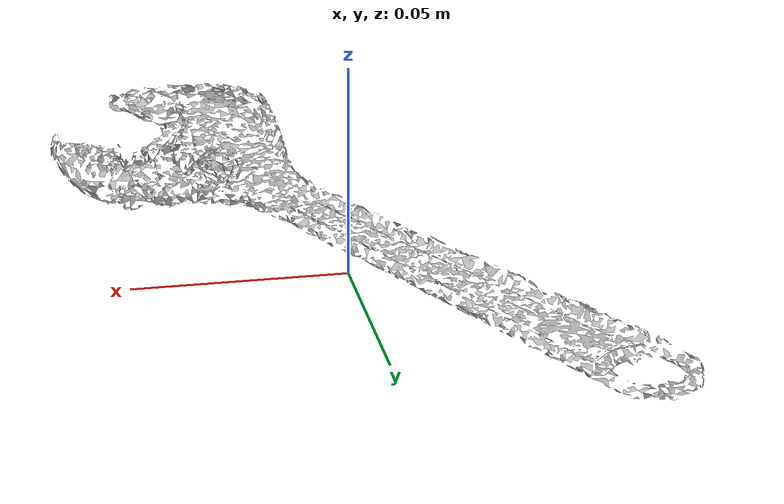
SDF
<?xml version='1.0'?>
<sdf version="1.4">
  <model name="adjustable_wrench">
    <static>false</static>
    <link name="link">
      <inertial>
        <pose>0.01450146241685899 -0.049664842094331994 0.004250780997626007 -1.0205516501683318 1.5340779965528404 -2.0839203161585824</pose>
        <mass>1.9821730387476e-05</mass>
        <inertia>
          <ixx>4.68812164277712e-08</ixx>
          <ixy>8.011925726705155e-25</ixy>
          <ixz>3.0180646055664565e-24</ixz>
          <iyy>4.282249507787249e-08</iyy>
          <iyz>-8.215550244094782e-24</iyz>
          <izz>4.257478965991318e-09</izz>
        </inertia>
      </inertial>
      <collision name="collision">
        <geometry>
          <mesh>
            <!-- Use a downsampled mesh for collisions -->
            <uri>model://042_adjustable_wrench/downsampled.obj</uri>
	        </mesh>
        </geometry>
        <surface>
      </surface>
      </collision>
      <visual name="visual">
        <geometry>
          <mesh>
            <uri>model://042_adjustable_wrench/google_16k/textured.obj</uri>
	        </mesh>
        </geometry>
        <material>
          <script>
            <uri>model://042_adjustable_wrench/adjustable_wrench.material</uri>
            <name>adjustable_wrench</name>
          </script>
        </material>
      </visual>
    </link>
  </model>
</sdf>
